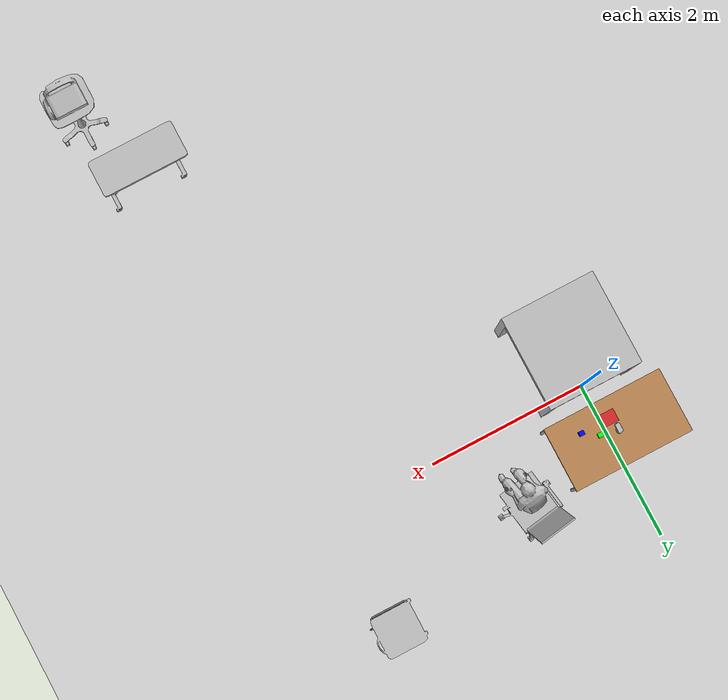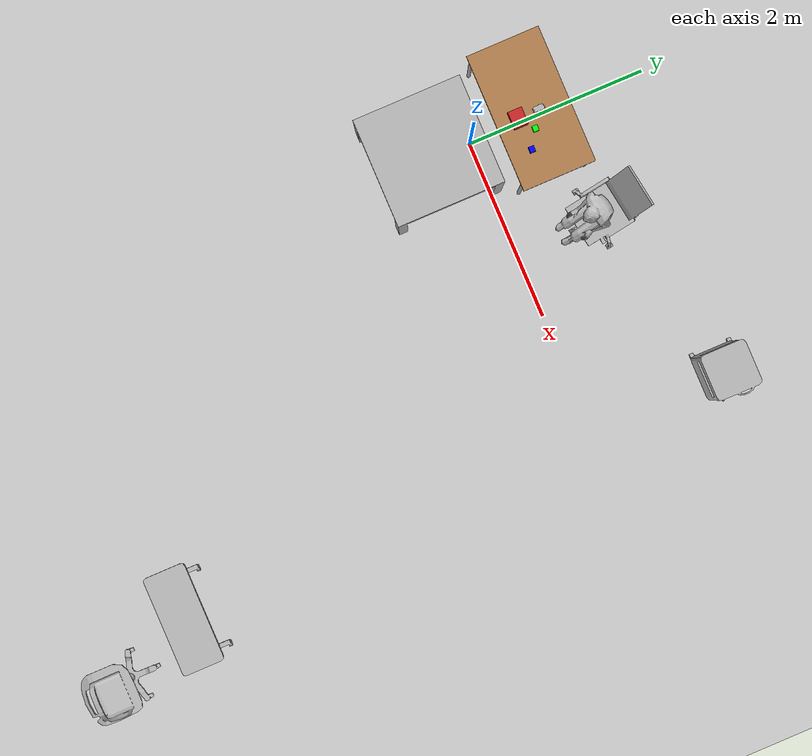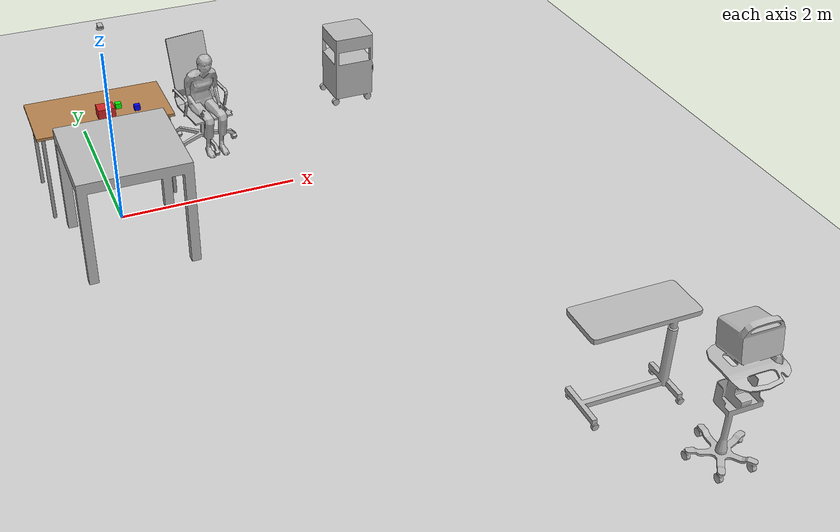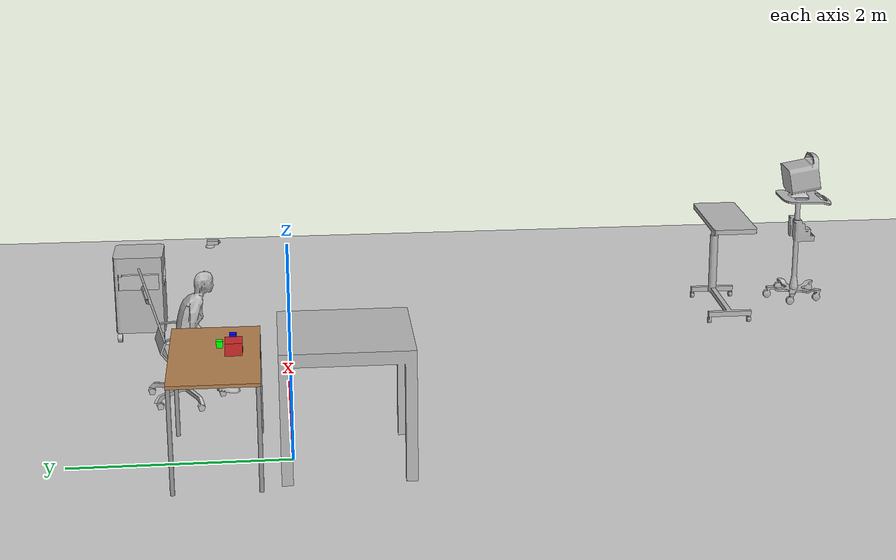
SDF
<sdf version="1.6">
 <world name="default">
  <light name="sun" type="directional">
   <pose>0 0 10 0 -0 0</pose>
   <diffuse>0.8 0.8 0.8 1</diffuse>
   <specular>0.2 0.2 0.2 1</specular>
   <attenuation>
    <range>1000</range>
    <constant>0.9</constant>
    <linear>0.01</linear>
    <quadratic>0.001</quadratic>
   </attenuation>
   <direction>-0.5 0.1 -0.9</direction>
  </light>
  <model name="ground_plane">
   <static>1</static>
   <link name="link">
    <collision name="collision">
     <geometry><plane><normal>0 0 1</normal><size>100 100</size></plane></geometry>
     <surface><friction><ode><mu>100</mu><mu2>50</mu2></ode></friction></surface>
    </collision>
    <visual name="visual">
     <cast_shadows>0</cast_shadows>
     <geometry><plane><normal>0 0 1</normal><size>100 100</size></plane></geometry>
     <material>
      <script><uri>file://media/materials/scripts/gazebo.material</uri><name>Gazebo/Grey</name></script>
     </material>
    </visual>
   </link>
  </model>
  <gravity>0 0 -9.8</gravity>
  <magnetic_field>6e-06 2.3e-05 -4.2e-05</magnetic_field>
  <atmosphere type="adiabatic"/>
  <physics name="default_physics" default="0" type="ode">
   <max_step_size>0.001</max_step_size>
   <real_time_factor>1</real_time_factor>
   <real_time_update_rate>1000</real_time_update_rate>
  </physics>
  <scene><ambient>0.4 0.4 0.4 1</ambient><background>0.7 0.7 0.7 1</background><shadows>1</shadows></scene>
  <audio><device>default</device></audio>
  <spherical_coordinates>
   <surface_model>EARTH_WGS84</surface_model>
   <latitude_deg>0</latitude_deg>
   <longitude_deg>0</longitude_deg>
   <elevation>0</elevation>
   <heading_deg>0</heading_deg>
  </spherical_coordinates>
  <model name="logical_camera_2">
   <plugin name="ros_logical_camera_2" filename="libROSLogicalCameraPlugin.so">
    <robotNamespace>/mte_roblab</robotNamespace>
   </plugin>
   <link name="logical_camera_2_link">
    <gravity>0</gravity>
    <inertial>
     <mass>0.1</mass>
     <inertia>
      <ixx>0.000166667</ixx>
      <iyy>0.000166667</iyy>
      <izz>0.000166667</izz>
      <ixy>0</ixy>
      <ixz>0</ixz>
      <iyz>0</iyz>
     </inertia>
    </inertial>
    <collision name="collision">
     <pose>0 0.02 0 0 0 -1.5708</pose>
     <geometry><mesh><uri>model://logical_camera2/meshes/camera.dae</uri></mesh></geometry>
    </collision>
    <visual name="visual">
     <pose>0 0.02 0 0 0 -1.5708</pose>
     <geometry><mesh><uri>model://logical_camera2/meshes/camera.dae</uri></mesh></geometry>
    </visual>
    <sensor name="logical_camera_2" type="logical_camera">
     <logical_camera>
      <near>0.9</near>
      <horizontal_fov>1.1</horizontal_fov>
      <aspect_ratio>2</aspect_ratio>
      <far>1</far>
     </logical_camera>
     <visualize>0</visualize>
     <always_on>0</always_on>
     <update_rate>10</update_rate>
     <topic>logical_camera_2</topic>
    </sensor>
   </link>
   <pose>0.141336 0.637335 1.98253 1.58181 1.57079 3.13058</pose>
  </model>
  <model name="unit_box_blue">
   <link name="link">
    <inertial>
     <mass>0.1</mass>
     <inertia>
      <ixx>5.763e-05</ixx>
      <ixy>0</ixy>
      <ixz>0</ixz>
      <iyy>6.331e-05</iyy>
      <iyz>0</iyz>
      <izz>6.119e-05</izz>
     </inertia>
    </inertial>
    <visual name="visual">
     <geometry><box><size>0.063346 0.05771 0.059872</size></box></geometry>
     <material>
      <script><name>Gazebo/Grey</name><uri>file://media/materials/scripts/gazebo.material</uri></script>
      <ambient>0 0 1 1</ambient>
      <shader type="vertex"><normal_map>__default__</normal_map></shader>
      <diffuse>0.7 0.7 0.7 1</diffuse>
      <specular>0.01 0.01 0.01 1</specular>
      <emissive>0 0 0 1</emissive>
     </material>
    </visual>
    <collision name="collision">
     <geometry><box><size>0.063346 0.05771 0.059872</size></box></geometry>
     <surface>
      <friction>
       <ode><mu>5</mu><mu2>5</mu2><fdir1>0 0 0</fdir1><slip1>0</slip1><slip2>0</slip2></ode>
       <torsional>
        <coefficient>1</coefficient>
        <patch_radius>0</patch_radius>
        <surface_radius>0</surface_radius>
        <use_patch_radius>1</use_patch_radius>
        <ode><slip>0</slip></ode>
       </torsional>
      </friction>
      <bounce><restitution_coefficient>0</restitution_coefficient><threshold>1e+06</threshold></bounce>
      <contact>
       <collide_without_contact>0</collide_without_contact>
       <collide_without_contact_bitmask>1</collide_without_contact_bitmask>
       <collide_bitmask>1</collide_bitmask>
       <ode>
        <soft_cfm>0</soft_cfm>
        <soft_erp>0.2</soft_erp>
        <kp>1e+13</kp>
        <kd>1</kd>
        <max_vel>0.01</max_vel>
        <min_depth>0</min_depth>
       </ode>
       <bullet>
        <split_impulse>1</split_impulse>
        <split_impulse_penetration_threshold>-0.01</split_impulse_penetration_threshold>
        <soft_cfm>0</soft_cfm>
        <soft_erp>0.2</soft_erp>
        <kp>1e+13</kp>
        <kd>1</kd>
       </bullet>
      </contact>
     </surface>
    </collision>
   </link>
   <static>0</static>
   <pose>0.392163 0.500043 1.04493 -4e-06 -4.4e-05 -0.003133</pose>
  </model>
  <model name="package_box_red">
   <link name="link">
    <inertial>
     <mass>1</mass>
     <inertia>
      <ixx>0.166667</ixx>
      <ixy>0</ixy>
      <ixz>0</ixz>
      <iyy>0.166667</iyy>
      <iyz>0</iyz>
      <izz>0.166667</izz>
     </inertia>
    </inertial>
    <visual name="visual">
     <geometry><box><size>0.186353 0.153311 0.168909</size></box></geometry>
     <material>
      <script><name>Gazebo/Red</name><uri>file://media/materials/scripts/gazebo.material</uri></script>
      <shader type="pixel"><normal_map>__default__</normal_map></shader>
      <ambient>1 0 0 1</ambient>
      <diffuse>1 0 0 1</diffuse>
      <specular>0.1 0.1 0.1 1</specular>
      <emissive>0 0 0 0</emissive>
     </material>
    </visual>
    <collision name="collision">
     <geometry><box><size>0.186353 0.153311 0.168909</size></box></geometry>
     <surface>
      <friction>
       <ode><mu>1</mu><mu2>1</mu2><fdir1>0 0 0</fdir1><slip1>0</slip1><slip2>0</slip2></ode>
       <torsional>
        <coefficient>1</coefficient>
        <patch_radius>0</patch_radius>
        <surface_radius>0</surface_radius>
        <use_patch_radius>1</use_patch_radius>
        <ode><slip>0</slip></ode>
       </torsional>
      </friction>
      <bounce><restitution_coefficient>0</restitution_coefficient><threshold>1e+06</threshold></bounce>
      <contact>
       <collide_without_contact>0</collide_without_contact>
       <collide_without_contact_bitmask>1</collide_without_contact_bitmask>
       <collide_bitmask>1</collide_bitmask>
       <ode>
        <soft_cfm>0</soft_cfm>
        <soft_erp>0.2</soft_erp>
        <kp>1e+13</kp>
        <kd>1</kd>
        <max_vel>0.01</max_vel>
        <min_depth>0</min_depth>
       </ode>
       <bullet>
        <split_impulse>1</split_impulse>
        <split_impulse_penetration_threshold>-0.01</split_impulse_penetration_threshold>
        <soft_cfm>0</soft_cfm>
        <soft_erp>0.2</soft_erp>
        <kp>1e+13</kp>
        <kd>1</kd>
       </bullet>
      </contact>
     </surface>
    </collision>
   </link>
   <static>0</static>
   <pose>0.046954 0.489787 1.04522 -1.1e-05 -2e-06 3.1e-05</pose>
  </model>
  <model name="unit_box_blue_clone">
   <link name="link">
    <inertial>
     <mass>0.1</mass>
     <inertia>
      <ixx>5.763e-05</ixx>
      <ixy>0</ixy>
      <ixz>0</ixz>
      <iyy>6.331e-05</iyy>
      <iyz>0</iyz>
      <izz>6.119e-05</izz>
     </inertia>
    </inertial>
    <visual name="visual">
     <geometry><box><size>0.063346 0.05771 0.059872</size></box></geometry>
     <material>
      <script><name>Gazebo/Grey</name><uri>file://media/materials/scripts/gazebo.material</uri></script>
      <ambient>0 1 0 1</ambient>
      <shader type="vertex"><normal_map>__default__</normal_map></shader>
      <diffuse>0.7 0.7 0.7 1</diffuse>
      <specular>0.01 0.01 0.01 1</specular>
      <emissive>0 0 0 1</emissive>
     </material>
    </visual>
    <collision name="collision">
     <geometry><box><size>0.063346 0.05771 0.059872</size></box></geometry>
     <surface>
      <friction>
       <ode><mu>5</mu><mu2>5</mu2><fdir1>0 0 0</fdir1><slip1>0</slip1><slip2>0</slip2></ode>
       <torsional>
        <coefficient>1</coefficient>
        <patch_radius>0</patch_radius>
        <surface_radius>0</surface_radius>
        <use_patch_radius>1</use_patch_radius>
        <ode><slip>0</slip></ode>
       </torsional>
      </friction>
      <bounce><restitution_coefficient>0</restitution_coefficient><threshold>1e+06</threshold></bounce>
      <contact>
       <collide_without_contact>0</collide_without_contact>
       <collide_without_contact_bitmask>1</collide_without_contact_bitmask>
       <collide_bitmask>1</collide_bitmask>
       <ode>
        <soft_cfm>0</soft_cfm>
        <soft_erp>0.2</soft_erp>
        <kp>1e+13</kp>
        <kd>1</kd>
        <max_vel>0.01</max_vel>
        <min_depth>0</min_depth>
       </ode>
       <bullet>
        <split_impulse>1</split_impulse>
        <split_impulse_penetration_threshold>-0.01</split_impulse_penetration_threshold>
        <soft_cfm>0</soft_cfm>
        <soft_erp>0.2</soft_erp>
        <kp>1e+13</kp>
        <kd>1</kd>
       </bullet>
      </contact>
     </surface>
    </collision>
   </link>
   <static>0</static>
   <pose>0.208822 0.616605 1.04493 -5.8e-05 -6.2e-05 -0.002769</pose>
  </model>
  <model name="nist_elevated_floor_120">
   <static>1</static>
   <link name="nist_elevated_floor_120">
    <collision name="collision">
     <geometry>
      <mesh><uri>model://nist_elevated_floor_120/meshes/nist_elevated_floor_120.dae</uri><scale>1 1 1</scale></mesh>
     </geometry>
    </collision>
    <visual name="visual">
     <geometry>
      <mesh><uri>model://nist_elevated_floor_120/meshes/nist_elevated_floor_120.dae</uri><scale>1 1 1</scale></mesh>
     </geometry>
    </visual>
   </link>
   <pose>0.005735 -0.482404 0 0 -0 0</pose>
  </model>
  <model name="table">
   <static>1</static>
   <link name="link">
    <collision name="surface">
     <pose>0 0 1 0 -0 0</pose>
     <geometry><box><size>1.5 0.8 0.03</size></box></geometry>
     <surface><friction><ode><mu>0.6</mu><mu2>0.6</mu2></ode></friction></surface>
    </collision>
    <visual name="visual1">
     <pose>0 0 1 0 -0 0</pose>
     <geometry><box><size>1.5 0.8 0.03</size></box></geometry>
     <material>
      <script><uri>file://media/materials/scripts/gazebo.material</uri><name>Gazebo/Wood</name></script>
     </material>
    </visual>
    <collision name="front_left_leg">
     <pose>0.68 0.38 0.5 0 -0 0</pose>
     <geometry><cylinder><radius>0.02</radius><length>1</length></cylinder></geometry>
    </collision>
    <visual name="front_left_leg">
     <pose>0.68 0.38 0.5 0 -0 0</pose>
     <geometry><cylinder><radius>0.02</radius><length>1</length></cylinder></geometry>
     <material>
      <script><uri>file://media/materials/scripts/gazebo.material</uri><name>Gazebo/Grey</name></script>
     </material>
    </visual>
    <collision name="front_right_leg">
     <pose>0.68 -0.38 0.5 0 -0 0</pose>
     <geometry><cylinder><radius>0.02</radius><length>1</length></cylinder></geometry>
    </collision>
    <visual name="front_right_leg">
     <pose>0.68 -0.38 0.5 0 -0 0</pose>
     <geometry><cylinder><radius>0.02</radius><length>1</length></cylinder></geometry>
     <material>
      <script><uri>file://media/materials/scripts/gazebo.material</uri><name>Gazebo/Grey</name></script>
     </material>
    </visual>
    <collision name="back_right_leg">
     <pose>-0.68 -0.38 0.5 0 -0 0</pose>
     <geometry><cylinder><radius>0.02</radius><length>1</length></cylinder></geometry>
    </collision>
    <visual name="back_right_leg">
     <pose>-0.68 -0.38 0.5 0 -0 0</pose>
     <geometry><cylinder><radius>0.02</radius><length>1</length></cylinder></geometry>
     <material>
      <script><uri>file://media/materials/scripts/gazebo.material</uri><name>Gazebo/Grey</name></script>
     </material>
    </visual>
    <collision name="back_left_leg">
     <pose>-0.68 0.38 0.5 0 -0 0</pose>
     <geometry><cylinder><radius>0.02</radius><length>1</length></cylinder></geometry>
    </collision>
    <visual name="back_left_leg">
     <pose>-0.68 0.38 0.5 0 -0 0</pose>
     <geometry><cylinder><radius>0.02</radius><length>1</length></cylinder></geometry>
     <material>
      <script><uri>file://media/materials/scripts/gazebo.material</uri><name>Gazebo/Grey</name></script>
     </material>
    </visual>
   </link>
   <pose>1.8e-05 0.659275 0 0 -0 0</pose>
  </model>
  <model name="BPCart">
   <link name="body">
    <visual name="visual"><geometry><mesh><uri>model://BPCart/meshes/Cart_BP.obj</uri></mesh></geometry></visual>
    <collision name="collision">
     <geometry><mesh><uri>model://BPCart/meshes/Cart_BP_Col.obj</uri></mesh></geometry>
    </collision>
    <inertial>
     <inertia><ixx>1</ixx><ixy>0</ixy><ixz>0</ixz><iyy>1</iyy><iyz>0</iyz><izz>1</izz></inertia>
     <mass>1</mass>
    </inertial>
   </link>
   <pose>3.80706 -5.62256 0.120379 0 -0 0</pose>
  </model>
  <model name="BedsideTable">
   <link name="body">
    <pose>0 0 0 0 0 -1.5708</pose>
    <visual name="visual">
     <geometry><mesh><uri>model://BedsideTable/meshes/BedsideTable.obj</uri></mesh></geometry>
    </visual>
    <collision name="collision">
     <geometry><mesh><uri>model://BedsideTable/meshes/BedsideTable_Col.obj</uri></mesh></geometry>
    </collision>
    <inertial>
     <inertia><ixx>1</ixx><ixy>0</ixy><ixz>0</ixz><iyy>1</iyy><iyz>0</iyz><izz>1</izz></inertia>
     <mass>1</mass>
    </inertial>
   </link>
   <pose>3.26856 1.49423 0.117113 0 -1e-06 0</pose>
  </model>
  <model name="BedTable">
   <link name="body">
    <visual name="visual">
     <geometry><mesh><uri>model://BedTable/meshes/BedTable.obj</uri></mesh></geometry>
    </visual>
    <collision name="collision">
     <geometry><mesh><uri>model://BedTable/meshes/BedTable_Col.obj</uri></mesh></geometry>
    </collision>
    <inertial>
     <inertia><ixx>1</ixx><ixy>0</ixy><ixz>0</ixz><iyy>1</iyy><iyz>0</iyz><izz>1</izz></inertia>
     <mass>1</mass>
    </inertial>
   </link>
   <pose>3.48412 -4.64835 0.118114 0 -0 0</pose>
  </model>
  <model name="OfficeChairBlack">
   <static>1</static>
   <link name="body">
    <visual name="visual">
     <geometry><mesh><uri>model://OfficeChairBlack/meshes/OfficeChairBlack.obj</uri></mesh></geometry>
    </visual>
    <collision name="collision">
     <geometry><mesh><uri>model://OfficeChairBlack/meshes/OfficeChairBlack_Col.obj</uri></mesh></geometry>
    </collision>
   </link>
   <pose>1.2357 0.987151 0.148471 0 -0 0.156658</pose>
  </model>
  <model name="PatientFSit">
   <static>1</static>
   <link name="body">
    <visual name="visual">
     <geometry><mesh><uri>model://PatientFSit/meshes/PatientFSit.obj</uri></mesh></geometry>
    </visual>
    <collision name="collision">
     <geometry><mesh><uri>model://PatientFSit/meshes/PatientFSit_Col.obj</uri></mesh></geometry>
    </collision>
   </link>
   <pose>1.21099 0.929626 0.215192 0 0 -1.34901</pose>
  </model>
 </world>
</sdf>
